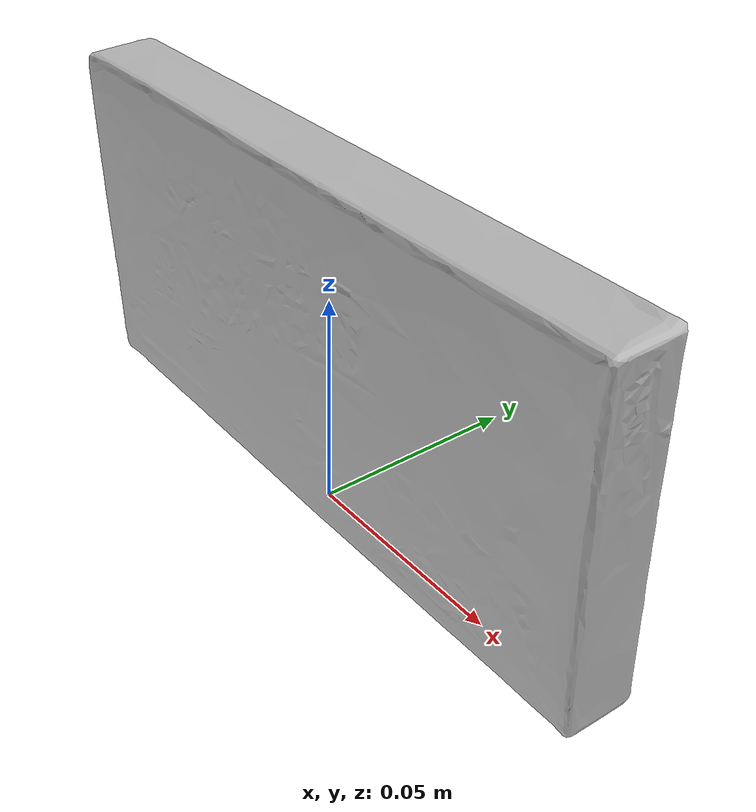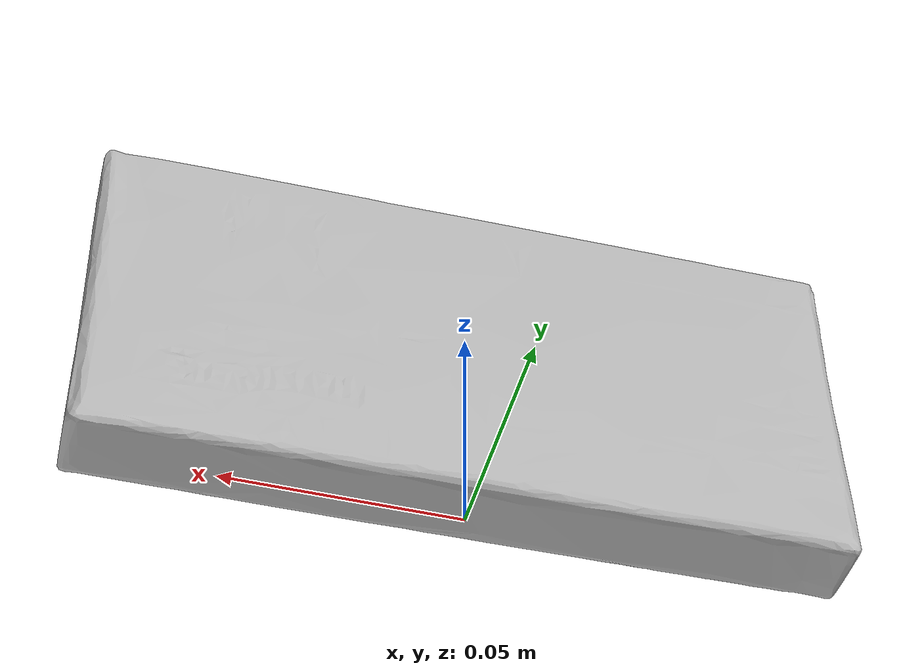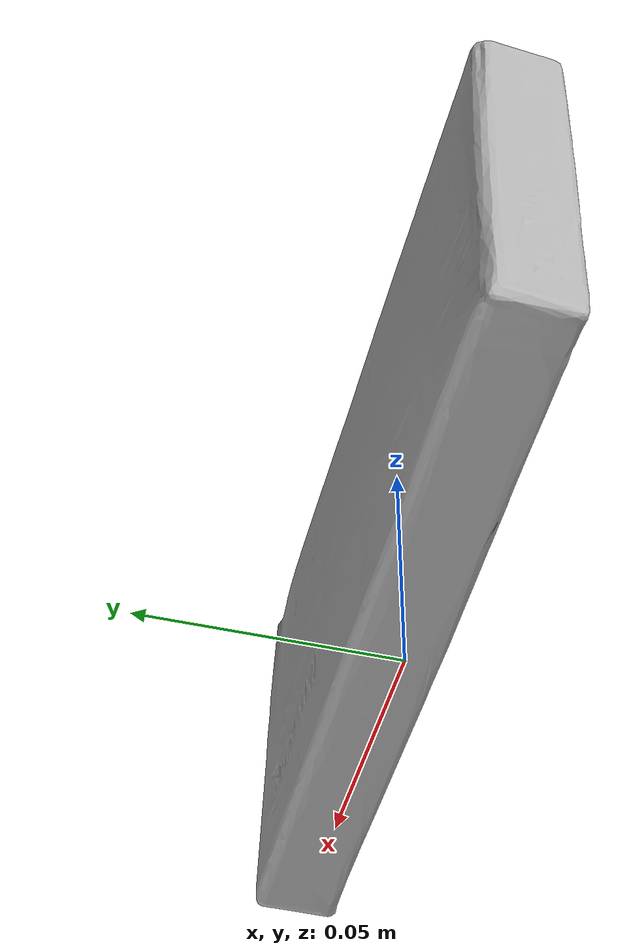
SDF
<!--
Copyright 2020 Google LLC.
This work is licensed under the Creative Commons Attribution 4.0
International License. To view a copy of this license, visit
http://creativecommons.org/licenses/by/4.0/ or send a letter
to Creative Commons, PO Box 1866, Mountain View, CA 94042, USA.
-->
<?xml version="1.0" ?>
<sdf version="1.6">
  <model name="Nestle_Raisinets_Milk_Chocolate_35_oz_992_g">
    <link name="link_0">
      <visual name="visual">
        <geometry>
          <mesh>
            <uri>model://Nestle_Raisinets_Milk_Chocolate_35_oz_992_g/meshes/model.obj</uri>
          </mesh>
        </geometry>
      </visual>
      <collision name="collision_0">
        <geometry>
          <mesh>
            <uri>model://Nestle_Raisinets_Milk_Chocolate_35_oz_992_g/meshes/model.obj</uri>
          </mesh>
        </geometry>
      </collision>
    </link>
  </model>
</sdf>
